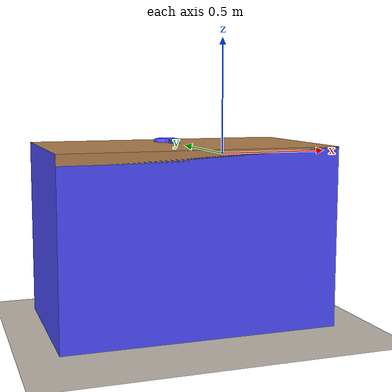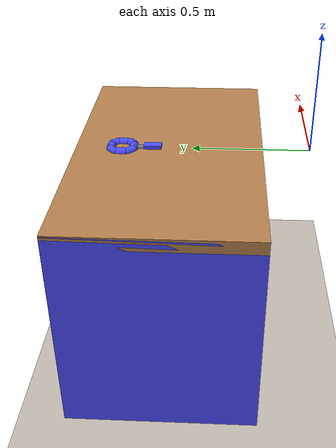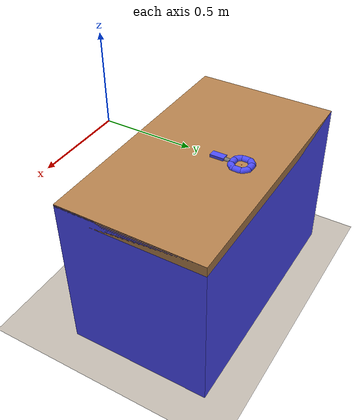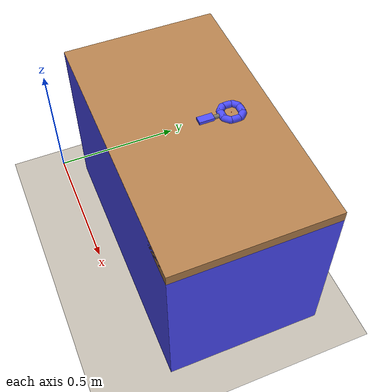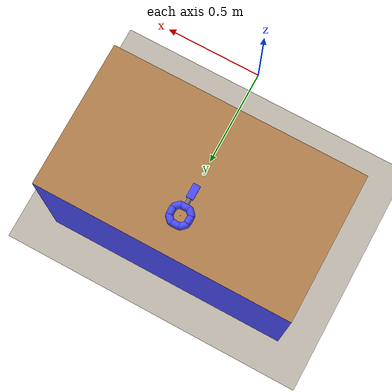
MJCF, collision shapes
<mujoco model="assembly_peg">
    <include file="assets/assembly_peg_dependencies.xml"/>
    <include file="../scene/basic_scene.xml"/>
    <worldbody>
        <body pos="0 0.8 0">
            <freejoint/>
            <include file="assets/assembly_peg.xml"/>
        </body>
    </worldbody>
</mujoco>

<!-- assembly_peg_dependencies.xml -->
<mujocoinclude>
    <compiler angle="radian" inertiafromgeom="auto" inertiagrouprange="4 5"/>
    <asset>
        <texture name="T_asmbly_met" type="cube" file="../textures/metal1.png"/>

      <material name="asmbly_col" rgba="0.3 0.3 1.0 0.5" shininess="0" specular="0"/>
      <material name="asmbly_green" rgba="0 .5 0 1" shininess="1" reflectance=".7" specular=".5"/>

      <material name="asmbly_metal" rgba=".65 .65 .65 1" texture="T_asmbly_met" shininess="1" reflectance=".7" specular=".5"/>

    </asset>
    <default>

      <default class="asmbly_base">
          <joint armature="0.001" damping="2" limited="true"/>
          <geom conaffinity="0" contype="0" group="1" type="mesh"/>
          <position ctrllimited="true" ctrlrange="0 1.57"/>
          <default class="asmbly_viz">
              <geom condim="4" type="mesh"/>
          </default>
          <default class="asmbly_col">
              <geom conaffinity="1" condim="3" contype="1" group="4" material="asmbly_col" solimp="0.99 0.99 0.01" solref="0.01 1"/>
          </default>
      </default>
    </default>

    <asset>
        <mesh file="../objects/meshes/assembly_peg/assembly_peg_handle.stl" name="assembly_peg_handle" scale="1 1 1" />
        <mesh file="../objects/meshes/assembly_peg/assembly_peg_ring.stl" name="assembly_peg_ring" scale="1 1 1" />
        <mesh file="../objects/meshes/assembly_peg/assembly_peg_rod.stl" name="assembly_peg_rod" scale="1 1 1" />
    </asset>

</mujocoinclude>

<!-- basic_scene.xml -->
<mujocoinclude>
  <option timestep='0.002' iterations="50" tolerance="1e-10" solver="Newton" jacobian="dense" cone="elliptic" mpr_iterations="1000" mpr_tolerance="1e-8"/>

  <asset>
    <!-- night sky -->
     <texture type="skybox" builtin="gradient" rgb1=".50 .495 .48" rgb2=".50 .495 .48" width="32" height="32"/>
     <texture name="T_table" type="cube" file="../textures/wood2.png"/>
     <texture name="T_floor" type="2d" file="../textures/floor2.png"/>

     <material name="basic_floor" texture="T_floor" texrepeat="12 12" shininess=".3" specular="0.5" reflectance="0.2"/>
     <material name="table_wood" texture="T_table" shininess=".3" specular="0.5"/>
      <!--material name="table_wood" rgba="1 1 1 1" shininess=".3" specular="0.5"/-->
     <material name="table_col" rgba="0.3 0.3 1.0 0.5" shininess="0" specular="0"/>

     <mesh file="../objects/meshes/table/tablebody.stl" name="tablebody" scale="1 1 1"/>
     <mesh file="../objects/meshes/table/tabletop.stl" name="tabletop" scale="1 1 1"/>
  </asset>

  <visual>
      <map fogstart="1.5" fogend="5" force="0.1" znear="0.1"/>
      <quality shadowsize ="4096" offsamples="4"/>

      <headlight ambient="0.4 0.4 0.4"/>

  </visual>

  <worldbody>
      <light castshadow="false" directional='true' diffuse='.3 .3 .3' specular='0.3 0.3 0.3' pos='-1 -1 1' dir='1 1 -1'/>
      <light directional='true' diffuse='.3 .3 .3' specular='0.3 0.3 0.3' pos='1 -1 1' dir='-1 1 -1'/>
      <light castshadow="false" directional='true' diffuse='.3 .3 .3' specular='0.3 0.3 0.3' pos='0 1 1' dir='0 -1 -1'/>
      <body name="tablelink" pos="0 .6 0">
        <geom material="table_wood" group="1" type="box" size=".7 .4 .027" pos="0 0 -.027" conaffinity="0" contype="0"/>
        <geom material="table_wood" group="1" mesh="tablebody" pos="0 0 -0.65" type="mesh" conaffinity="0" contype="0"/>
        <geom material="table_col" group="4" pos="0.0 0.0 -0.46" size="0.7 0.4 0.46" type="box" conaffinity="1" contype="0"/>
      </body>

      <geom name="floor" size="4 4 .1" pos="0 0 -.913" conaffinity="1" contype="1" type="plane" material="basic_floor" condim="3"/>

  </worldbody>

</mujocoinclude>

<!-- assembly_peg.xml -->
<mujocoinclude>
    <body childclass="asmbly_base" name="asmbly_peg">
        <geom material="asmbly_metal" mesh="assembly_peg_ring"/>
        <geom material="asmbly_green" mesh="assembly_peg_handle" pos="0 -0.13 0" name="WrenchHandle"/>
        <geom material="asmbly_metal" euler="1.57 0 0" pos="0 -0.1 0" size="0.012 0.05" type="cylinder"/>
        <geom class="asmbly_col" euler="1.57 0 0" pos="0.048 0 0" size="0.019 0.015" type="capsule" mass=".02"/>
        <geom class="asmbly_col" euler="0 1.57 0" pos="0 0.048 0" size="0.019 0.015" type="capsule" mass=".02"/>
        <geom class="asmbly_col" euler="1.57 0.785 0.785" pos="0.036 0.036 0" size="0.019 0.015" type="capsule" mass=".02"/>
        <geom class="asmbly_col" euler="1.57 0 0" pos="-0.048 0.0 0.0" size="0.019 0.015" type="capsule" mass=".02"/>
        <geom class="asmbly_col" euler="0 1.57 0" pos="0.0 -0.048 0.0" size="0.019 0.015" type="capsule" mass=".02"/>
        <geom class="asmbly_col" euler="1.57 -0.785 -0.785" pos="-0.036 0.036 0" size="0.019 0.015" type="capsule" mass=".02"/>
        <geom class="asmbly_col" euler="1.57 0.785 0.785" pos="-0.036 -0.036 0" size="0.019 0.015" type="capsule" mass=".02"/>
        <geom class="asmbly_col" euler="1.57 -0.785 -0.785" pos="0.036 -0.036 0" size="0.019 0.015" type="capsule" mass=".02"/>
        <geom class="asmbly_col" pos="0 -0.13 0" size="0.019 0.038 0.016" type="box" mass=".04"/>
        <geom class="asmbly_col" euler="1.57 0 0" pos="0 -0.1 0" size="0.012 0.05" type="cylinder" mass=".02"/>
        <site rgba="1 0 0 1" size="0.002 0.002 0.002" pos="0 0 0" type="sphere" name="RoundNut"/>
        <site rgba="1 1 1 1" size="0.005 0.005 0.005" pos="0 -.13 0.0" type="sphere" name="RoundNut-8"/>
    </body>
</mujocoinclude>
